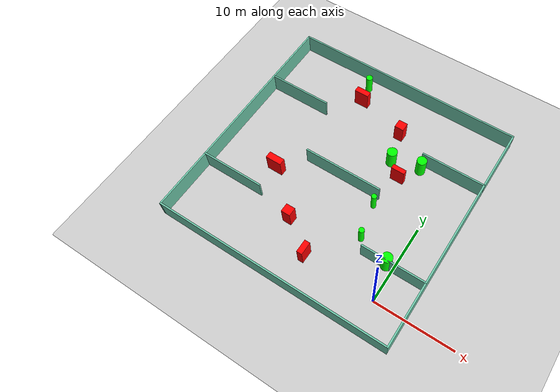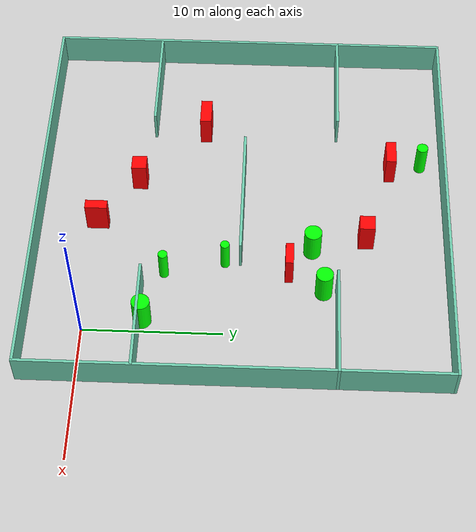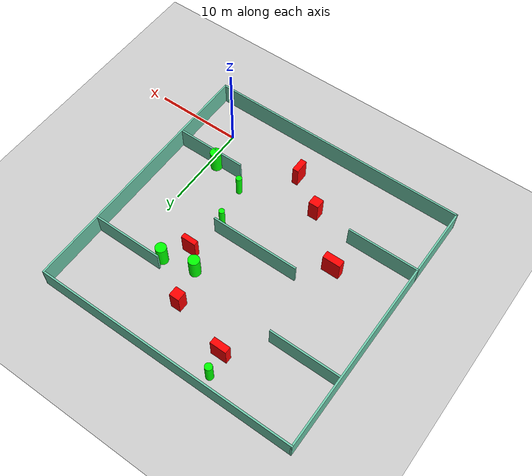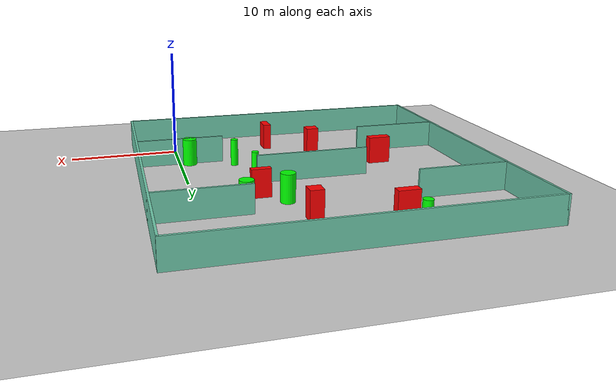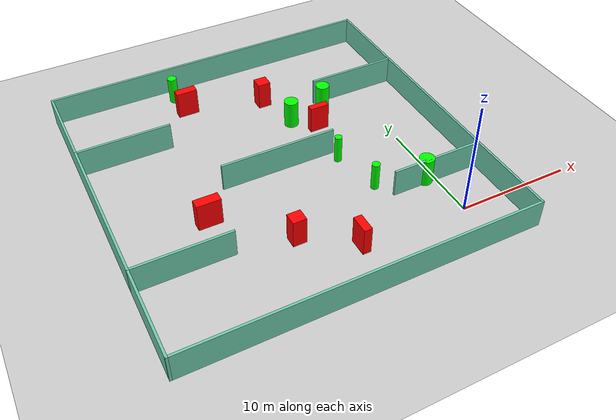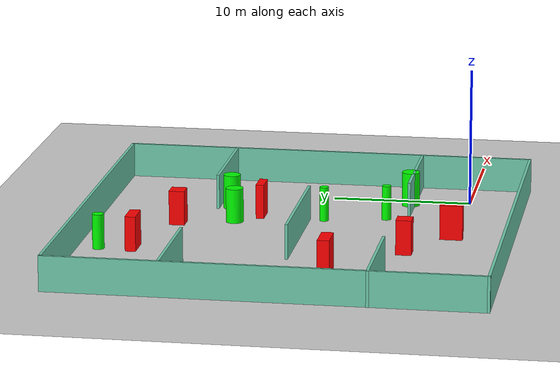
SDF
<sdf version="1.7">
 <world name="default">
  <light name="sun" type="directional">
   <pose>0 0 10 0 -0 0</pose>
   <diffuse>0.8 0.8 0.8 1</diffuse>
   <specular>0.2 0.2 0.2 1</specular>
   <attenuation>
    <range>1000</range>
    <constant>0.9</constant>
    <linear>0.01</linear>
    <quadratic>0.001</quadratic>
   </attenuation>
   <direction>-0.5 0.1 -0.9</direction>
   <spot><inner_angle>0</inner_angle><outer_angle>0</outer_angle><falloff>0</falloff></spot>
  </light>
  <model name="ground_plane">
   <static>1</static>
   <link name="link">
    <collision name="collision">
     <geometry><plane><normal>0 0 1</normal><size>100 100</size></plane></geometry>
     <surface>
      <contact><collide_bitmask>65535</collide_bitmask></contact>
      <friction><ode><mu>100</mu><mu2>50</mu2></ode></friction>
     </surface>
    </collision>
    <visual name="visual">
     <cast_shadows>0</cast_shadows>
     <geometry><plane><normal>0 0 1</normal><size>100 100</size></plane></geometry>
     <material>
      <script><uri>file://media/materials/scripts/gazebo.material</uri><name>Gazebo/Grey</name></script>
     </material>
    </visual>
   </link>
  </model>
  <gravity>0 0 -9.8</gravity>
  <magnetic_field>6e-06 2.3e-05 -4.2e-05</magnetic_field>
  <atmosphere type="adiabatic"/>
  <physics type="ode">
   <max_step_size>0.001</max_step_size>
   <real_time_factor>1</real_time_factor>
   <real_time_update_rate>1000</real_time_update_rate>
  </physics>
  <scene><ambient>0.4 0.4 0.4 1</ambient><background>0.7 0.7 0.7 1</background><shadows>1</shadows></scene>
  <spherical_coordinates>
   <surface_model>EARTH_WGS84</surface_model>
   <latitude_deg>0</latitude_deg>
   <longitude_deg>0</longitude_deg>
   <elevation>0</elevation>
   <heading_deg>0</heading_deg>
  </spherical_coordinates>
  <model name="my_base_walls">
   <link name="Wall_10">
    <collision name="Wall_10_Collision">
     <geometry><box><size>8.2 0.2 2.5</size></box></geometry>
     <pose>0 0 1.25 0 -0 0</pose>
    </collision>
    <visual name="Wall_10_Visual">
     <pose>0 0 1.25 0 -0 0</pose>
     <geometry><box><size>8.2 0.2 2.5</size></box></geometry>
     <material>
      <script><uri>file://media/materials/scripts/gazebo.material</uri><name>Gazebo/Grey</name></script>
      <ambient>0.435294 0.796078 0.67451 1</ambient>
     </material>
     <meta><layer>0</layer></meta>
    </visual>
    <pose>-11 -7 0 0 -0 0</pose>
   </link>
   <link name="Wall_12">
    <collision name="Wall_12_Collision">
     <geometry><box><size>8.2 0.2 2.5</size></box></geometry>
     <pose>0 0 1.25 0 -0 0</pose>
    </collision>
    <visual name="Wall_12_Visual">
     <pose>0 0 1.25 0 -0 0</pose>
     <geometry><box><size>8.2 0.2 2.5</size></box></geometry>
     <material>
      <script><uri>file://media/materials/scripts/gazebo.material</uri><name>Gazebo/Grey</name></script>
      <ambient>0.435294 0.796078 0.67451 1</ambient>
     </material>
     <meta><layer>0</layer></meta>
    </visual>
    <pose>-11 7 0 0 -0 0</pose>
   </link>
   <link name="Wall_14">
    <collision name="Wall_14_Collision">
     <geometry><box><size>8.2 0.2 2.5</size></box></geometry>
     <pose>0 0 1.25 0 -0 0</pose>
    </collision>
    <visual name="Wall_14_Visual">
     <pose>0 0 1.25 0 -0 0</pose>
     <geometry><box><size>8.2 0.2 2.5</size></box></geometry>
     <material>
      <script><uri>file://media/materials/scripts/gazebo.material</uri><name>Gazebo/Grey</name></script>
      <ambient>0.435294 0.796078 0.67451 1</ambient>
     </material>
     <meta><layer>0</layer></meta>
    </visual>
    <pose>11 7 0 0 -0 3.14159</pose>
   </link>
   <link name="Wall_16">
    <collision name="Wall_16_Collision">
     <geometry><box><size>10.2 0.2 2.5</size></box></geometry>
     <pose>0 0 1.25 0 -0 0</pose>
    </collision>
    <visual name="Wall_16_Visual">
     <pose>0 0 1.25 0 -0 0</pose>
     <geometry><box><size>10.2 0.2 2.5</size></box></geometry>
     <material>
      <script><uri>file://media/materials/scripts/gazebo.material</uri><name>Gazebo/Grey</name></script>
      <ambient>0.435294 0.796078 0.67451 1</ambient>
     </material>
     <meta><layer>0</layer></meta>
    </visual>
    <pose>0 0 0 0 -0 3.14159</pose>
   </link>
   <link name="Wall_2">
    <collision name="Wall_2_Collision">
     <geometry><box><size>30.2 0.2 2.5</size></box></geometry>
     <pose>0 0 1.25 0 -0 0</pose>
    </collision>
    <visual name="Wall_2_Visual">
     <pose>0 0 1.25 0 -0 0</pose>
     <geometry><box><size>30.2 0.2 2.5</size></box></geometry>
     <material>
      <script><uri>file://media/materials/scripts/gazebo.material</uri><name>Gazebo/Grey</name></script>
      <ambient>0.435294 0.796078 0.67451 1</ambient>
     </material>
     <meta><layer>0</layer></meta>
    </visual>
    <pose>0 -15 0 0 -0 3.14159</pose>
   </link>
   <link name="Wall_3">
    <collision name="Wall_3_Collision">
     <geometry><box><size>30.2 0.2 2.5</size></box></geometry>
     <pose>0 0 1.25 0 -0 0</pose>
    </collision>
    <visual name="Wall_3_Visual">
     <pose>0 0 1.25 0 -0 0</pose>
     <geometry><box><size>30.2 0.2 2.5</size></box></geometry>
     <material>
      <script><uri>file://media/materials/scripts/gazebo.material</uri><name>Gazebo/Grey</name></script>
      <ambient>0.435294 0.796078 0.67451 1</ambient>
     </material>
     <meta><layer>0</layer></meta>
    </visual>
    <pose>-15 0 0 0 -0 1.5708</pose>
   </link>
   <link name="Wall_4">
    <collision name="Wall_4_Collision">
     <geometry><box><size>30.2 0.2 2.5</size></box></geometry>
     <pose>0 0 1.25 0 -0 0</pose>
    </collision>
    <visual name="Wall_4_Visual">
     <pose>0 0 1.25 0 -0 0</pose>
     <geometry><box><size>30.2 0.2 2.5</size></box></geometry>
     <material>
      <script><uri>file://media/materials/scripts/gazebo.material</uri><name>Gazebo/Grey</name></script>
      <ambient>0.435294 0.796078 0.67451 1</ambient>
     </material>
     <meta><layer>0</layer></meta>
    </visual>
    <pose>0 15 0 0 -0 0</pose>
   </link>
   <link name="Wall_6">
    <collision name="Wall_6_Collision">
     <geometry><box><size>30.2 0.2 2.5</size></box></geometry>
     <pose>0 0 1.25 0 -0 0</pose>
    </collision>
    <visual name="Wall_6_Visual">
     <pose>0 0 1.25 0 -0 0</pose>
     <geometry><box><size>30.2 0.2 2.5</size></box></geometry>
     <material>
      <script><uri>file://media/materials/scripts/gazebo.material</uri><name>Gazebo/Grey</name></script>
      <ambient>0.435294 0.796078 0.67451 1</ambient>
     </material>
     <meta><layer>0</layer></meta>
    </visual>
    <pose>15 0 0 0 -0 1.5708</pose>
   </link>
   <link name="Wall_8">
    <collision name="Wall_8_Collision">
     <geometry><box><size>8.2 0.2 2.5</size></box></geometry>
     <pose>0 0 1.25 0 -0 0</pose>
    </collision>
    <visual name="Wall_8_Visual">
     <pose>0 0 1.25 0 -0 0</pose>
     <geometry><box><size>8.2 0.2 2.5</size></box></geometry>
     <material>
      <script><uri>file://media/materials/scripts/gazebo.material</uri><name>Gazebo/Grey</name></script>
      <ambient>0.435294 0.796078 0.67451 1</ambient>
     </material>
     <meta><layer>0</layer></meta>
    </visual>
    <pose>11 -7 0 0 -0 3.14159</pose>
   </link>
   <static>1</static>
   <pose>-11 11 0 0 -0 0</pose>
  </model>
  <model name="cylinder1">
   <static>1</static>
   <link name="link">
    <inertial>
     <mass>1</mass>
     <inertia><ixx>0.5</ixx><ixy>0</ixy><ixz>0</ixz><iyy>0.5</iyy><iyz>0</iyz><izz>1</izz></inertia>
    </inertial>
    <collision name="collision">
     <geometry><cylinder><radius>0.6308843715287821</radius><length>2.5</length></cylinder></geometry>
    </collision>
    <visual name="visual">
     <geometry><cylinder><radius>0.6308843715287821</radius><length>2.5</length></cylinder></geometry>
     <material>
      <ambient>0 1 0 1</ambient>
      <diffuse>0 1 0 1</diffuse>
      <specular>0.1 0.1 0.1 1</specular>
      <emissive>0 0 0 0</emissive>
     </material>
    </visual>
   </link>
   <pose>-7.271645760562656 16.19964887715307 1.25 0 0 0</pose>
  </model>
  <model name="cylinder2">
   <static>1</static>
   <link name="link">
    <inertial>
     <mass>1</mass>
     <inertia><ixx>0.5</ixx><ixy>0</ixy><ixz>0</ixz><iyy>0.5</iyy><iyz>0</iyz><izz>1</izz></inertia>
    </inertial>
    <collision name="collision">
     <geometry><cylinder><radius>0.3388102425356949</radius><length>2.5</length></cylinder></geometry>
    </collision>
    <visual name="visual">
     <geometry><cylinder><radius>0.3388102425356949</radius><length>2.5</length></cylinder></geometry>
     <material>
      <ambient>0 1 0 1</ambient>
      <diffuse>0 1 0 1</diffuse>
      <specular>0.1 0.1 0.1 1</specular>
      <emissive>0 0 0 0</emissive>
     </material>
    </visual>
   </link>
   <pose>-4.975942595421856 5.509931642267732 1.25 0 0 0</pose>
  </model>
  <model name="cylinder3">
   <static>1</static>
   <link name="link">
    <inertial>
     <mass>1</mass>
     <inertia><ixx>0.5</ixx><ixy>0</ixy><ixz>0</ixz><iyy>0.5</iyy><iyz>0</iyz><izz>1</izz></inertia>
    </inertial>
    <collision name="collision">
     <geometry><cylinder><radius>0.613661239759095</radius><length>2.5</length></cylinder></geometry>
    </collision>
    <visual name="visual">
     <geometry><cylinder><radius>0.613661239759095</radius><length>2.5</length></cylinder></geometry>
     <material>
      <ambient>0 1 0 1</ambient>
      <diffuse>0 1 0 1</diffuse>
      <specular>0.1 0.1 0.1 1</specular>
      <emissive>0 0 0 0</emissive>
     </material>
    </visual>
   </link>
   <pose>-3.6798799352272695 17.036707201388136 1.25 0 0 0</pose>
  </model>
  <model name="cylinder4">
   <static>1</static>
   <link name="link">
    <inertial>
     <mass>1</mass>
     <inertia><ixx>0.5</ixx><ixy>0</ixy><ixz>0</ixz><iyy>0.5</iyy><iyz>0</iyz><izz>1</izz></inertia>
    </inertial>
    <collision name="collision">
     <geometry><cylinder><radius>0.32292785364396304</radius><length>2.5</length></cylinder></geometry>
    </collision>
    <visual name="visual">
     <geometry><cylinder><radius>0.32292785364396304</radius><length>2.5</length></cylinder></geometry>
     <material>
      <ambient>0 1 0 1</ambient>
      <diffuse>0 1 0 1</diffuse>
      <specular>0.1 0.1 0.1 1</specular>
      <emissive>0 0 0 0</emissive>
     </material>
    </visual>
   </link>
   <pose>-5.992326600943247 9.895048922813094 1.25 0 0 0</pose>
  </model>
  <model name="cylinder5">
   <static>1</static>
   <link name="link">
    <inertial>
     <mass>1</mass>
     <inertia><ixx>0.5</ixx><ixy>0</ixy><ixz>0</ixz><iyy>0.5</iyy><iyz>0</iyz><izz>1</izz></inertia>
    </inertial>
    <collision name="collision">
     <geometry><cylinder><radius>0.4158363335764088</radius><length>2.5</length></cylinder></geometry>
    </collision>
    <visual name="visual">
     <geometry><cylinder><radius>0.4158363335764088</radius><length>2.5</length></cylinder></geometry>
     <material>
      <ambient>0 1 0 1</ambient>
      <diffuse>0 1 0 1</diffuse>
      <specular>0.1 0.1 0.1 1</specular>
      <emissive>0 0 0 0</emissive>
     </material>
    </visual>
   </link>
   <pose>-15.445434401325489 24.383957944255698 1.25 0 0 0</pose>
  </model>
  <model name="cylinder6">
   <static>1</static>
   <link name="link">
    <inertial>
     <mass>1</mass>
     <inertia><ixx>0.5</ixx><ixy>0</ixy><ixz>0</ixz><iyy>0.5</iyy><iyz>0</iyz><izz>1</izz></inertia>
    </inertial>
    <collision name="collision">
     <geometry><cylinder><radius>0.6479325517314279</radius><length>2.5</length></cylinder></geometry>
    </collision>
    <visual name="visual">
     <geometry><cylinder><radius>0.6479325517314279</radius><length>2.5</length></cylinder></geometry>
     <material>
      <ambient>0 1 0 1</ambient>
      <diffuse>0 1 0 1</diffuse>
      <specular>0.1 0.1 0.1 1</specular>
      <emissive>0 0 0 0</emissive>
     </material>
    </visual>
   </link>
   <pose>-0.924162901307497 4.254843310913168 1.25 0 0 0</pose>
  </model>
  <model name="box1">
   <static>1</static>
   <link name="link">
    <inertial>
     <mass>1</mass>
     <inertia><ixx>0.083</ixx><ixy>0</ixy><ixz>0</ixz><iyy>0.083</iyy><iyz>0</iyz><izz>0.083</izz></inertia>
    </inertial>
    <collision name="collision">
     <geometry><box><size>1.1584847592693335 1.0980276313694708 2.5</size></box></geometry>
    </collision>
    <visual name="visual">
     <geometry><box><size>1.1584847592693335 1.0980276313694708 2.5</size></box></geometry>
     <material>
      <ambient>1 0 0 1</ambient>
      <diffuse>1 0 0 1</diffuse>
      <specular>0.1 0.1 0.1 1</specular>
      <emissive>0 0 0 0</emissive>
     </material>
    </visual>
    <sensor name="my_contact" type="contact">
     <contact><collision>box_collision</collision><topic>__default_topic__</topic></contact>
    </sensor>
   </link>
   <pose>-13.296713540979363 3.1606049482974132 1.25 0 0 0</pose>
  </model>
  <model name="box2">
   <static>1</static>
   <link name="link">
    <inertial>
     <mass>1</mass>
     <inertia><ixx>0.083</ixx><ixy>0</ixy><ixz>0</ixz><iyy>0.083</iyy><iyz>0</iyz><izz>0.083</izz></inertia>
    </inertial>
    <collision name="collision">
     <geometry><box><size>1.8776554365028297 0.7521736513186921 2.5</size></box></geometry>
    </collision>
    <visual name="visual">
     <geometry><box><size>1.8776554365028297 0.7521736513186921 2.5</size></box></geometry>
     <material>
      <ambient>1 0 0 1</ambient>
      <diffuse>1 0 0 1</diffuse>
      <specular>0.1 0.1 0.1 1</specular>
      <emissive>0 0 0 0</emissive>
     </material>
    </visual>
    <sensor name="my_contact" type="contact">
     <contact><collision>box_collision</collision><topic>__default_topic__</topic></contact>
    </sensor>
   </link>
   <pose>-14.996911599739704 22.01923016090287 1.25 0 0 0</pose>
  </model>
  <model name="box3">
   <static>1</static>
   <link name="link">
    <inertial>
     <mass>1</mass>
     <inertia><ixx>0.083</ixx><ixy>0</ixy><ixz>0</ixz><iyy>0.083</iyy><iyz>0</iyz><izz>0.083</izz></inertia>
    </inertial>
    <collision name="collision">
     <geometry><box><size>1.7148596362751958 0.5827357287803098 2.5</size></box></geometry>
    </collision>
    <visual name="visual">
     <geometry><box><size>1.7148596362751958 0.5827357287803098 2.5</size></box></geometry>
     <material>
      <ambient>1 0 0 1</ambient>
      <diffuse>1 0 0 1</diffuse>
      <specular>0.1 0.1 0.1 1</specular>
      <emissive>0 0 0 0</emissive>
     </material>
    </visual>
    <sensor name="my_contact" type="contact">
     <contact><collision>box_collision</collision><topic>__default_topic__</topic></contact>
    </sensor>
   </link>
   <pose>-5.413689472025084 14.538536050450947 1.25 0 0 0</pose>
  </model>
  <model name="box4">
   <static>1</static>
   <link name="link">
    <inertial>
     <mass>1</mass>
     <inertia><ixx>0.083</ixx><ixy>0</ixy><ixz>0</ixz><iyy>0.083</iyy><iyz>0</iyz><izz>0.083</izz></inertia>
    </inertial>
    <collision name="collision">
     <geometry><box><size>0.6997103369943142 1.6168103145589436 2.5</size></box></geometry>
    </collision>
    <visual name="visual">
     <geometry><box><size>0.6997103369943142 1.6168103145589436 2.5</size></box></geometry>
     <material>
      <ambient>1 0 0 1</ambient>
      <diffuse>1 0 0 1</diffuse>
      <specular>0.1 0.1 0.1 1</specular>
      <emissive>0 0 0 0</emissive>
     </material>
    </visual>
    <sensor name="my_contact" type="contact">
     <contact><collision>box_collision</collision><topic>__default_topic__</topic></contact>
    </sensor>
   </link>
   <pose>-9.25515086280904 0.3276566441247635 1.25 0 0 0</pose>
  </model>
  <model name="box5">
   <static>1</static>
   <link name="link">
    <inertial>
     <mass>1</mass>
     <inertia><ixx>0.083</ixx><ixy>0</ixy><ixz>0</ixz><iyy>0.083</iyy><iyz>0</iyz><izz>0.083</izz></inertia>
    </inertial>
    <collision name="collision">
     <geometry><box><size>2.050412306136735 0.8446358647078225 2.5</size></box></geometry>
    </collision>
    <visual name="visual">
     <geometry><box><size>2.050412306136735 0.8446358647078225 2.5</size></box></geometry>
     <material>
      <ambient>1 0 0 1</ambient>
      <diffuse>1 0 0 1</diffuse>
      <specular>0.1 0.1 0.1 1</specular>
      <emissive>0 0 0 0</emissive>
     </material>
    </visual>
    <sensor name="my_contact" type="contact">
     <contact><collision>box_collision</collision><topic>__default_topic__</topic></contact>
    </sensor>
   </link>
   <pose>-18.548947471887963 7.906829252586711 1.25 0 0 0</pose>
  </model>
  <model name="box6">
   <static>1</static>
   <link name="link">
    <inertial>
     <mass>1</mass>
     <inertia><ixx>0.083</ixx><ixy>0</ixy><ixz>0</ixz><iyy>0.083</iyy><iyz>0</iyz><izz>0.083</izz></inertia>
    </inertial>
    <collision name="collision">
     <geometry><box><size>1.1679483716618153 1.1155189751777275 2.5</size></box></geometry>
    </collision>
    <visual name="visual">
     <geometry><box><size>1.1679483716618153 1.1155189751777275 2.5</size></box></geometry>
     <material>
      <ambient>1 0 0 1</ambient>
      <diffuse>1 0 0 1</diffuse>
      <specular>0.1 0.1 0.1 1</specular>
      <emissive>0 0 0 0</emissive>
     </material>
    </visual>
    <sensor name="my_contact" type="contact">
     <contact><collision>box_collision</collision><topic>__default_topic__</topic></contact>
    </sensor>
   </link>
   <pose>-8.30629526789041 20.123773122727403 1.25 0 0 0</pose>
  </model>
 </world>
</sdf>
